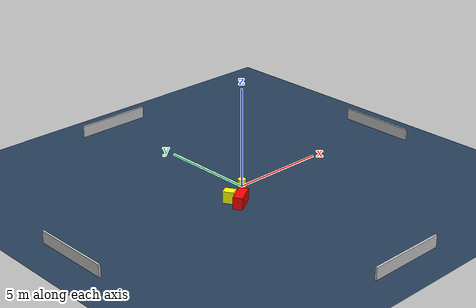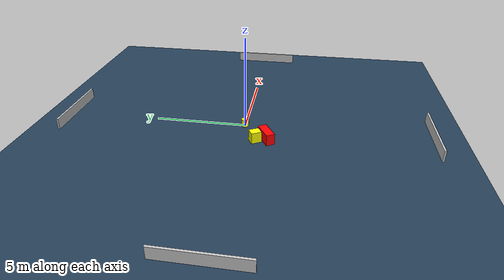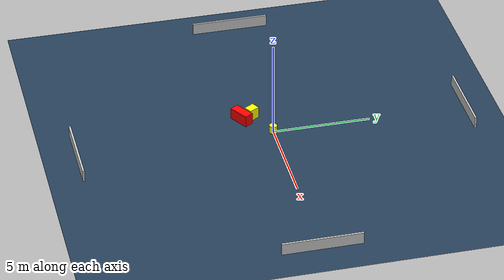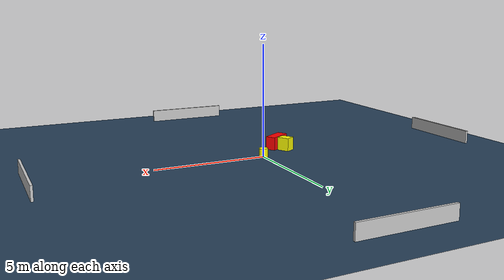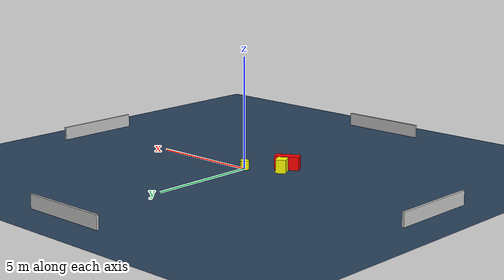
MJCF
<?xml version="1.0" ?>
<mujoco model="generated_environment">
  <option timestep="0.01" integrator="RK4" cone="elliptic"/>
  <default>
    <geom density="1"/>
  </default>
  <asset>
    <texture builtin="gradient" height="3072" name="skybox" rgb1="0.3 0.5 0.7" rgb2="0 0 0" type="skybox" width="512"/>
    <texture builtin="checker" height="300" name="groundplane" rgb1="0.2 0.3 0.4" rgb2="0.1 0.2 0.3" type="2d" width="300"/>
    <material name="groundplane" reflectance="0.2" texrepeat="5 5" texture="groundplane"/>
  </asset>
  <worldbody>
    <light dir="0 0 -1" directional="true" pos="0 0 1.5"/>
    <geom condim="3" friction="0.5 0.005 0.001" material="groundplane" name="floor" pos="0 0 0" size="0 0 0.05" type="plane"/>
    <body name="walls">
      <geom name="wall_1" condim="4" pos="-10.0 0.0 0.3" rgba="0.800000011920929 0.800000011920929 0.800000011920929 1.0" size="0.05 2.0 0.3" type="box"/>
      <geom name="wall_2" condim="4" pos="10.0 0.0 0.3" rgba="0.800000011920929 0.800000011920929 0.800000011920929 1.0" size="0.05 2.0 0.3" type="box"/>
      <geom name="wall_3" condim="4" pos="0.0 -10.0 0.3" rgba="0.800000011920929 0.800000011920929 0.800000011920929 1.0" size="2.0 0.05 0.3" type="box"/>
      <geom name="wall_4" condim="4" pos="0.0 10.0 0.3" rgba="0.800000011920929 0.800000011920929 0.800000011920929 1.0" size="2.0 0.05 0.3" type="box"/>
    </body>
    <body name="robot">
      <joint name="joint_x" type="slide" pos="0 0 0" axis="1 0 0"/>
      <joint name="joint_y" type="slide" pos="0 0 0" axis="0 1 0"/>
      <geom name="robot" type="cylinder" pos="0.0 0.0 0.2" size="0.2 0.2 0.0" mass="5.0" friction="1.0 0.005 0.0001" condim="4" rgba="1.0 1.0 0.0 1.0"/>
    </body>
    <body name="obstacle_1_movable">
      <geom name="obstacle_1_movable" condim="4" pos="-1.5192136144859707 -0.7576147123913386 0.3" euler="0 0 299.22598632531873" friction="0.0 0.005 0.001" rgba="1.0 1.0 0.0 1.0" size="0.27813335457571864 0.22486521303696724 0.3" type="box" mass="0.1"/>
      <joint type="free"/>
    </body>
    <body name="obstacle_2_static">
      <geom name="obstacle_2_static" condim="4" pos="-1.339234404610984 -1.3211725947049588 0.3" euler="0 0 211.1190156697112" friction="0.0 0.005 0.001" rgba="1.0 0.0 0.0 1.0" size="0.5479033195473297 0.2330179815191426 0.3" type="box"/>
    </body>
  </worldbody>
  <actuator>
    <motor name="actuator_x" joint="joint_x" gear="1" ctrlrange="-1 1"/>
    <motor name="actuator_y" joint="joint_y" gear="1" ctrlrange="-1 1"/>
  </actuator>
</mujoco>
